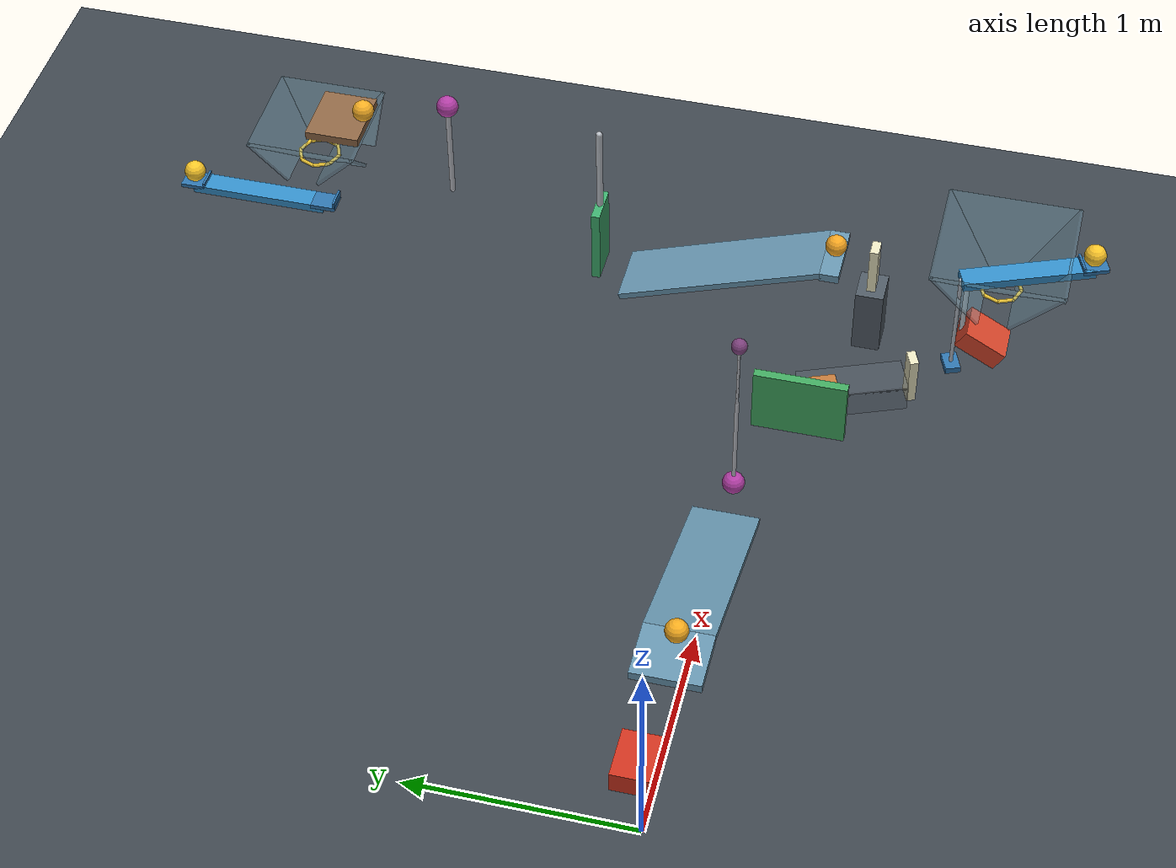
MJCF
<mujoco model="revised_five_ball_cascade">
  <compiler angle="degree" autolimits="true"/>
  <option timestep="0.002" gravity="0 0 -9.81" integrator="implicitfast" solver="Newton" iterations="100" noslip_iterations="20" tolerance="1e-10" cone="elliptic"/>
  <size njmax="3000" nconmax="1000"/>

  <worldbody>
    <light name="overhead_light" pos="1 0 6" dir="0 0 -1" directional="true"/>
    <geom name="floor" type="plane" pos="0 0 0" size="12 12 0.1" friction="0.68 0.001 0.0005" solref="0.006 0.69" solimp="0.95 0.99 0.001" rgba="0.24 0.27 0.30 1"/>

    <!-- Cart1 contacts ball1 at slide displacement 0.50 m. -->
    <body name="cart1" pos="-0.06 0 0.542020">
      <inertial pos="0 0 0" mass="0.50" diaginertia="0.001766667 0.002433333 0.003366667"/>
      <joint name="cart1_slide" type="slide" axis="1 0 0" damping="0.20" range="0 0.56" solreflimit="0.004 1"/>
      <geom name="cart1_chassis" type="box" size="0.11 0.09 0.05" mass="0" friction="0.68 0.001 0.0005" solref="0.006 0.69" rgba="0.80 0.20 0.12 1"/>
    </body>

    <body name="ball1" pos="0.60 0 0.542020">
      <freejoint name="ball1_free"/>
      <geom name="ball1_sphere" type="sphere" size="0.05" mass="0.20" condim="6" friction="0.68 0.001 0.0005" solref="0.006 0.69" rgba="0.96 0.67 0.12 1"/>
    </body>

    <!-- Inclined surface endpoints: (0.65, 0, 0.492020), (1.589693, 0, 0.15). -->
    <body name="ramp1" pos="1.114716 0 0.306915">
      <geom name="ramp1_incline" type="box" quat="0.984807753 0 0.173648178 0" size="0.50 0.15 0.015" friction="0.68 0.001 0.0005" solref="0.006 0.69" rgba="0.40 0.58 0.68 1"/>
      <geom name="ramp1_start_perch" type="box" pos="-0.594716 0 0.165105" size="0.13 0.15 0.02" friction="0.68 0.001 0.0005" solref="0.006 0.69" rgba="0.40 0.58 0.68 1"/>
    </body>

    <!-- Pendulum1 total mass: 0.025 + 0.125 + 0.200 = 0.350 kg. -->
    <body name="pendulum1" pos="1.739693 0 0.68">
      <joint name="pendulum1_hinge" type="hinge" axis="0 -1 0" damping="0.04" range="0 85" solreflimit="0.004 1"/>
      <geom name="pendulum1_rod" type="capsule" fromto="0 0 0 0 0 -0.50" size="0.009" mass="0.025" friction="0.68 0.001 0.0005" solref="0.006 0.69" rgba="0.75 0.76 0.79 1"/>
      <geom name="pendulum1_bob" type="sphere" pos="0 0 -0.50" size="0.05" mass="0.125" friction="0.68 0.001 0.0005" solref="0.006 0.69" rgba="0.70 0.24 0.65 1"/>
      <geom name="pendulum1_counterweight_rod" type="capsule" fromto="0 0 0 0 0 0.34375" size="0.006" mass="0" friction="0.68 0.001 0.0005" solref="0.006 0.69" rgba="0.75 0.76 0.79 1"/>
      <geom name="pendulum1_counterweight" type="sphere" pos="0 0 0.34375" size="0.035" mass="0.20" friction="0.68 0.001 0.0005" solref="0.006 0.69" rgba="0.48 0.25 0.48 1"/>
    </body>

    <!-- Door contact is placed near pendulum1's 40-degree position. -->
    <body name="door1" pos="2.131086 -0.42 0.32">
      <inertial pos="0 0.38 0" mass="0.45" diaginertia="0.0040 0.00384 0.00030"/>
      <joint name="door1_hinge" type="hinge" axis="0 0.4 -0.916515139" damping="0.04" range="0 70" solreflimit="0.003 1"/>
      <geom name="door1_panel" type="box" pos="0 0.21 0" size="0.02 0.21 0.16" mass="0" friction="0.68 0.001 0.0005" solref="0.006 0.69" rgba="0.25 0.65 0.37 1"/>
    </body>

    <body name="block1" pos="2.46916 -0.271352 0.06" quat="0.827380 0 0 -0.561642">
      <freejoint name="block1_free"/>
      <geom name="block1_cube" type="box" size="0.06 0.06 0.06" mass="0.35" contype="9" conaffinity="9" friction="0.68 0.001 0.0005" solref="0.006 0.69" solimp="0.95 0.99 0.001" rgba="0.88 0.49 0.15 1"/>
    </body>

    <!-- Guide clearance is 2 mm per side and 2 mm above the cube. -->
    <body name="block1_guide" pos="2.46916 -0.271352 0" quat="0.827380 0 0 -0.561642">
      <geom name="block1_guide_left" type="box" pos="0.125 0.074 0.065" size="0.245 0.012 0.065" contype="8" conaffinity="8" friction="0.68 0.001 0.0005" solref="0.006 0.69" rgba="0.40 0.45 0.50 0.35"/>
      <geom name="block1_guide_right" type="box" pos="0.125 -0.074 0.065" size="0.245 0.012 0.065" contype="8" conaffinity="8" friction="0.68 0.001 0.0005" solref="0.006 0.69" rgba="0.40 0.45 0.50 0.35"/>
      <geom name="block1_guide_roof" type="box" pos="0.125 0 0.13" size="0.245 0.086 0.008" contype="8" conaffinity="8" friction="0.68 0.001 0.0005" solref="0.006 0.69" rgba="0.40 0.45 0.50 0.25"/>
    </body>

    <!-- Nominal block displacement to domino contact is 0.32 m. -->
    <body name="domino1" pos="2.61681 -0.643102 0.12" quat="0.827380 0 0 -0.561642">
      <freejoint name="domino1_free"/>
      <geom name="domino1_tile" type="box" size="0.02 0.04 0.12" mass="0.25" friction="0.68 0.001 0.0005" solref="0.006 0.69" rgba="0.91 0.89 0.75 1"/>
    </body>

    <!-- Horizontal lever with a lightweight rigid input leg. -->
    <body name="lever1" pos="2.793986 -1.089206 0.70" quat="0.827380 0 0 -0.561642">
      <inertial pos="0 0 0" mass="0.50" diaginertia="0.000483333 0.015066667 0.015416667"/>
      <joint name="lever1_hinge" type="hinge" axis="0 -1 0" damping="0.04" range="0 45" solreflimit="0.003 1"/>
      <geom name="lever1_beam" type="box" size="0.30 0.05 0.02" mass="0" friction="0.68 0.001 0.0005" solref="0.006 0.69" rgba="0.20 0.55 0.78 1"/>
      <geom name="lever1_input_leg" type="capsule" fromto="-0.30 0 0 -0.30 0 -0.52" size="0.009" mass="0" friction="0.68 0.001 0.0005" solref="0.006 0.69" rgba="0.70 0.73 0.77 1"/>
      <geom name="lever1_input_foot" type="box" pos="-0.30 0 -0.52" size="0.035 0.05 0.015" mass="0" friction="0.68 0.001 0.0005" solref="0.006 0.69" rgba="0.18 0.45 0.67 1"/>
      <geom name="lever1_launch_pad" type="box" pos="0.30 0 0.01" size="0.06 0.05 0.01" mass="0" friction="0.68 0.001 0.0005" solref="0.006 0.69" rgba="0.18 0.45 0.67 1"/>
      <geom name="lever1_launch_curb" type="box" pos="0.245 0 0.03" size="0.005 0.05 0.01" mass="0" friction="0.68 0.001 0.0005" solref="0.006 0.69" rgba="0.18 0.45 0.67 1"/>
    </body>

    <body name="ball2" pos="2.904720 -1.368021 0.77">
      <freejoint name="ball2_free"/>
      <geom name="ball2_sphere" type="sphere" size="0.05" mass="0.20" contype="3" conaffinity="3" condim="6" friction="0.68 0.001 0.0005" solref="0.006 0.69" rgba="0.98 0.77 0.16 1"/>
    </body>

    <!-- Enlarged catcher mouth remains below ball2's initial support level. -->
    <body name="ball2_catcher" pos="2.942819 -0.976296 0.49">
      <geom name="ball2_catcher_positive_x" type="box" pos="0.185 0 0.115" quat="0.923879533 0 -0.382683432 0" size="0.162634560 0.30 0.008" contype="2" conaffinity="2" friction="0.68 0.001 0.0005" solref="0.006 0.69" rgba="0.45 0.64 0.72 0.35"/>
      <geom name="ball2_catcher_negative_x" type="box" pos="-0.185 0 0.115" quat="0.923879533 0 0.382683432 0" size="0.162634560 0.30 0.008" contype="2" conaffinity="2" friction="0.68 0.001 0.0005" solref="0.006 0.69" rgba="0.45 0.64 0.72 0.35"/>
      <geom name="ball2_catcher_positive_y" type="box" pos="0 0.185 0.115" quat="0.923879533 0.382683432 0 0" size="0.30 0.162634560 0.008" contype="2" conaffinity="2" friction="0.68 0.001 0.0005" solref="0.006 0.69" rgba="0.45 0.64 0.72 0.35"/>
      <geom name="ball2_catcher_negative_y" type="box" pos="0 -0.185 0.115" quat="0.923879533 -0.382683432 0 0" size="0.30 0.162634560 0.008" contype="2" conaffinity="2" friction="0.68 0.001 0.0005" solref="0.006 0.69" rgba="0.45 0.64 0.72 0.35"/>
    </body>

    <!-- Ring1 is 0.32 m below ball2's initial center. -->
    <body name="ring1" pos="2.942819 -0.976296 0.45">
      <geom name="ring1_segment0" type="capsule" fromto="0.0952505 0 0 0.0673522 0.0673522 0" size="0.008" contype="2" conaffinity="2" friction="0.68 0.001 0.0005" solref="0.006 0.69" rgba="0.95 0.79 0.21 1"/>
      <geom name="ring1_segment1" type="capsule" fromto="0.0673522 0.0673522 0 0 0.0952505 0" size="0.008" contype="2" conaffinity="2" friction="0.68 0.001 0.0005" solref="0.006 0.69" rgba="0.95 0.79 0.21 1"/>
      <geom name="ring1_segment2" type="capsule" fromto="0 0.0952505 0 -0.0673522 0.0673522 0" size="0.008" contype="2" conaffinity="2" friction="0.68 0.001 0.0005" solref="0.006 0.69" rgba="0.95 0.79 0.21 1"/>
      <geom name="ring1_segment3" type="capsule" fromto="-0.0673522 0.0673522 0 -0.0952505 0 0" size="0.008" contype="2" conaffinity="2" friction="0.68 0.001 0.0005" solref="0.006 0.69" rgba="0.95 0.79 0.21 1"/>
      <geom name="ring1_segment4" type="capsule" fromto="-0.0952505 0 0 -0.0673522 -0.0673522 0" size="0.008" contype="2" conaffinity="2" friction="0.68 0.001 0.0005" solref="0.006 0.69" rgba="0.95 0.79 0.21 1"/>
      <geom name="ring1_segment5" type="capsule" fromto="-0.0673522 -0.0673522 0 0 -0.0952505 0" size="0.008" contype="2" conaffinity="2" friction="0.68 0.001 0.0005" solref="0.006 0.69" rgba="0.95 0.79 0.21 1"/>
      <geom name="ring1_segment6" type="capsule" fromto="0 -0.0952505 0 0.0673522 -0.0673522 0" size="0.008" contype="2" conaffinity="2" friction="0.68 0.001 0.0005" solref="0.006 0.69" rgba="0.95 0.79 0.21 1"/>
      <geom name="ring1_segment7" type="capsule" fromto="0.0673522 -0.0673522 0 0.0952505 0 0" size="0.008" contype="2" conaffinity="2" friction="0.68 0.001 0.0005" solref="0.006 0.69" rgba="0.95 0.79 0.21 1"/>
    </body>

    <!-- Nominal ball-center contact height is 0.20 m, 0.25 m below ring1. -->
    <body name="cart2" pos="2.942819 -0.926296 0.113397">
      <inertial pos="0 0 0" mass="0.50" diaginertia="0.002433333 0.001766667 0.003366667"/>
      <joint name="cart2_slide" type="slide" axis="0 1 0" damping="0.20" range="0 0.44" solreflimit="0.004 1"/>
      <geom name="cart2_chassis" type="box" quat="0.965925826 0.258819045 0 0" size="0.09 0.11 0.05" mass="0" friction="0.68 0.001 0.0005" solref="0.006 0.69" rgba="0.82 0.26 0.16 1"/>
      <geom name="cart2_striker" type="capsule" fromto="0 0.10 0 0 0.10 0.32" size="0.012" mass="0" friction="0.68 0.001 0.0005" solref="0.006 0.69" rgba="0.75 0.77 0.80 1"/>
    </body>

    <body name="domino2_platform" pos="2.942819 -0.394296 0.165">
      <geom name="domino2_platform_top" type="box" size="0.08 0.065 0.165" friction="0.68 0.001 0.0005" solref="0.006 0.69" rgba="0.31 0.35 0.39 1"/>
    </body>

    <body name="domino2" pos="2.942819 -0.394296 0.45">
      <freejoint name="domino2_free"/>
      <geom name="domino2_tile" type="box" size="0.04 0.02 0.12" mass="0.25" friction="0.68 0.001 0.0005" solref="0.006 0.69" rgba="0.91 0.89 0.75 1"/>
    </body>

    <body name="ball3" pos="2.942819 -0.214296 0.542020">
      <freejoint name="ball3_free"/>
      <geom name="ball3_sphere" type="sphere" size="0.05" mass="0.20" condim="6" friction="0.68 0.001 0.0005" solref="0.006 0.69" rgba="0.96 0.65 0.13 1"/>
    </body>

    <body name="ramp2" pos="2.942819 0.300420 0.306915">
      <geom name="ramp2_incline" type="box" quat="0.984807753 -0.173648178 0 0" size="0.15 0.50 0.015" friction="0.68 0.001 0.0005" solref="0.006 0.69" rgba="0.40 0.58 0.68 1"/>
      <geom name="ramp2_start_perch" type="box" pos="0 -0.509716 0.165105" size="0.15 0.045 0.02" friction="0.68 0.001 0.0005" solref="0.006 0.69" rgba="0.40 0.58 0.68 1"/>
    </body>

    <!-- Flap front surface is 0.10 m beyond ramp2's low edge. -->
    <body name="flap1" pos="2.942819 0.895397 0.18">
      <inertial pos="0 0 0.19" mass="0.28" diaginertia="0.003406667 0.004126667 0.000793333"/>
      <joint name="flap1_hinge" type="hinge" axis="-1 0 0" damping="0.04" range="0 60" solreflimit="0.003 1"/>
      <geom name="flap1_panel" type="box" pos="0 0 0.19" size="0.09 0.02 0.19" mass="0" friction="0.68 0.001 0.0005" solref="0.006 0.69" rgba="0.24 0.68 0.43 1"/>
      <geom name="flap1_striker" type="capsule" fromto="0 0 0.35 0 0 0.80" size="0.015" mass="0" friction="0.68 0.001 0.0005" solref="0.006 0.69" rgba="0.75 0.77 0.80 1"/>
    </body>

    <!-- Inverted pendulum: contact with ball4 occurs near 38 degrees. -->
    <body name="pendulum2" pos="2.942819 1.604509 0.505995">
      <joint name="pendulum2_hinge" type="hinge" axis="-1 0 0" damping="0.04" range="0 65" solreflimit="0.004 1"/>
      <geom name="pendulum2_rod" type="capsule" fromto="0 0 0 0 0 0.50" size="0.012" mass="0.04" friction="0.68 0.001 0.0005" solref="0.006 0.69" rgba="0.75 0.76 0.79 1"/>
      <geom name="pendulum2_bob" type="sphere" pos="0 0 0.50" size="0.05" mass="0.31" friction="0.68 0.001 0.0005" solref="0.006 0.69" rgba="0.70 0.24 0.65 1"/>
    </body>

    <!-- Shelf top is z = 0.85 m and does not obstruct the approach to ball4. -->
    <body name="shelf1" pos="2.942819 2.122340 0.83">
      <geom name="shelf1_board" type="box" size="0.15 0.125 0.02" friction="0.68 0.001 0.0005" solref="0.006 0.69" rgba="0.55 0.40 0.27 1"/>
    </body>

    <body name="ball4" pos="2.942819 2.012340 0.90">
      <freejoint name="ball4_free"/>
      <geom name="ball4_sphere" type="sphere" size="0.05" mass="0.20" contype="5" conaffinity="5" condim="6" friction="0.68 0.001 0.0005" solref="0.006 0.69" rgba="0.96 0.68 0.14 1"/>
    </body>

    <body name="ball4_catcher" pos="2.942819 2.247340 0.63">
      <geom name="ball4_catcher_positive_x" type="box" pos="0.16 0 0.09" quat="0.923879533 0 -0.382683432 0" size="0.127279221 0.25 0.008" contype="4" conaffinity="4" friction="0.68 0.001 0.0005" solref="0.006 0.69" rgba="0.45 0.64 0.72 0.35"/>
      <geom name="ball4_catcher_negative_x" type="box" pos="-0.16 0 0.09" quat="0.923879533 0 0.382683432 0" size="0.127279221 0.25 0.008" contype="4" conaffinity="4" friction="0.68 0.001 0.0005" solref="0.006 0.69" rgba="0.45 0.64 0.72 0.35"/>
      <geom name="ball4_catcher_positive_y" type="box" pos="0 0.16 0.09" quat="0.923879533 0.382683432 0 0" size="0.25 0.127279221 0.008" contype="4" conaffinity="4" friction="0.68 0.001 0.0005" solref="0.006 0.69" rgba="0.45 0.64 0.72 0.35"/>
      <geom name="ball4_catcher_negative_y" type="box" pos="0 -0.16 0.09" quat="0.923879533 -0.382683432 0 0" size="0.25 0.127279221 0.008" contype="4" conaffinity="4" friction="0.68 0.001 0.0005" solref="0.006 0.69" rgba="0.45 0.64 0.72 0.35"/>
    </body>

    <!-- Ring2 is beneath the shelf edge, 0.30 m below ball4's initial center. -->
    <body name="ring2" pos="2.942819 2.247340 0.60">
      <geom name="ring2_segment0" type="capsule" fromto="0.0952505 0 0 0.0673522 0.0673522 0" size="0.008" contype="4" conaffinity="4" friction="0.68 0.001 0.0005" solref="0.006 0.69" rgba="0.95 0.79 0.21 1"/>
      <geom name="ring2_segment1" type="capsule" fromto="0.0673522 0.0673522 0 0 0.0952505 0" size="0.008" contype="4" conaffinity="4" friction="0.68 0.001 0.0005" solref="0.006 0.69" rgba="0.95 0.79 0.21 1"/>
      <geom name="ring2_segment2" type="capsule" fromto="0 0.0952505 0 -0.0673522 0.0673522 0" size="0.008" contype="4" conaffinity="4" friction="0.68 0.001 0.0005" solref="0.006 0.69" rgba="0.95 0.79 0.21 1"/>
      <geom name="ring2_segment3" type="capsule" fromto="-0.0673522 0.0673522 0 -0.0952505 0 0" size="0.008" contype="4" conaffinity="4" friction="0.68 0.001 0.0005" solref="0.006 0.69" rgba="0.95 0.79 0.21 1"/>
      <geom name="ring2_segment4" type="capsule" fromto="-0.0952505 0 0 -0.0673522 -0.0673522 0" size="0.008" contype="4" conaffinity="4" friction="0.68 0.001 0.0005" solref="0.006 0.69" rgba="0.95 0.79 0.21 1"/>
      <geom name="ring2_segment5" type="capsule" fromto="-0.0673522 -0.0673522 0 0 -0.0952505 0" size="0.008" contype="4" conaffinity="4" friction="0.68 0.001 0.0005" solref="0.006 0.69" rgba="0.95 0.79 0.21 1"/>
      <geom name="ring2_segment6" type="capsule" fromto="0 -0.0952505 0 0.0673522 -0.0673522 0" size="0.008" contype="4" conaffinity="4" friction="0.68 0.001 0.0005" solref="0.006 0.69" rgba="0.95 0.79 0.21 1"/>
      <geom name="ring2_segment7" type="capsule" fromto="0.0673522 -0.0673522 0 0.0952505 0 0" size="0.008" contype="4" conaffinity="4" friction="0.68 0.001 0.0005" solref="0.006 0.69" rgba="0.95 0.79 0.21 1"/>
    </body>

    <!-- Left-end ball contact height is 0.35 m, 0.25 m below ring2. -->
    <body name="seesaw1" pos="2.942819 2.572340 0.28">
      <inertial pos="0 0 0" mass="0.55" diaginertia="0.019437917 0.000531667 0.019822917"/>
      <joint name="seesaw1_hinge" type="hinge" axis="1 0 0" damping="0.04" range="0 42" solreflimit="0.003 1"/>
      <geom name="seesaw1_beam" type="box" size="0.05 0.325 0.02" mass="0" friction="0.68 0.001 0.0005" solref="0.006 0.69" rgba="0.20 0.55 0.78 1"/>
      <geom name="seesaw1_left_pad" type="box" pos="0 -0.325 0.01" size="0.05 0.06 0.01" mass="0" friction="0.68 0.001 0.0005" solref="0.006 0.69" rgba="0.18 0.45 0.67 1"/>
      <geom name="seesaw1_left_curb" type="box" pos="0 -0.380 0.035" size="0.05 0.005 0.015" mass="0" friction="0.68 0.001 0.0005" solref="0.006 0.69" rgba="0.18 0.45 0.67 1"/>
      <geom name="seesaw1_right_pad" type="box" pos="0 0.325 0.01" size="0.05 0.06 0.01" mass="0" friction="0.68 0.001 0.0005" solref="0.006 0.69" rgba="0.18 0.45 0.67 1"/>
      <geom name="seesaw1_right_curb" type="box" pos="0 0.270 0.03" size="0.05 0.005 0.01" mass="0" friction="0.68 0.001 0.0005" solref="0.006 0.69" rgba="0.18 0.45 0.67 1"/>
    </body>

    <body name="ball5" pos="2.942819 2.897340 0.35">
      <freejoint name="ball5_free"/>
      <geom name="ball5_sphere" type="sphere" size="0.05" mass="0.20" condim="6" friction="0.68 0.001 0.0005" solref="0.006 0.69" rgba="0.98 0.78 0.16 1"/>
    </body>
  </worldbody>

  <tendon>
    <fixed name="cart1_compression_spring" stiffness="18" damping="0" springlength="0.20 10">
      <joint joint="cart1_slide" coef="1"/>
    </fixed>
  </tendon>

  <actuator>
    <motor name="block1_substatic_assist" joint="block1_free" gear="0.369116 -0.929383 0 0 0 0" ctrllimited="true" ctrlrange="0 2.30"/>
    <motor name="lever1_load_balanced_assist" joint="lever1_hinge" gear="1" ctrllimited="true" ctrlrange="0 0.55"/>
  </actuator>

  <keyframe>
    <key name="start" ctrl="2.25 0.55"/>
  </keyframe>
</mujoco>
